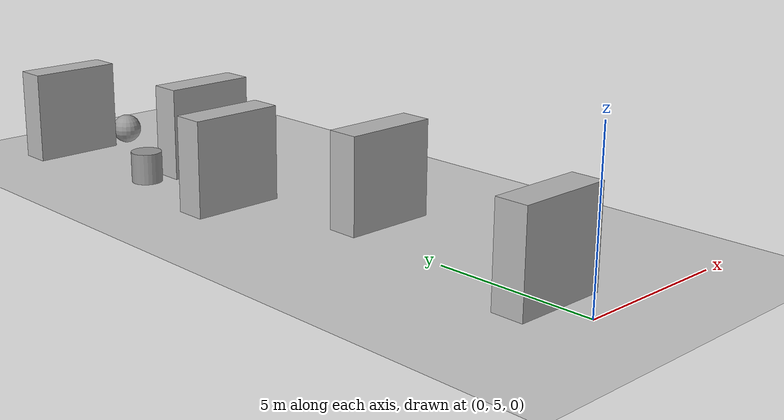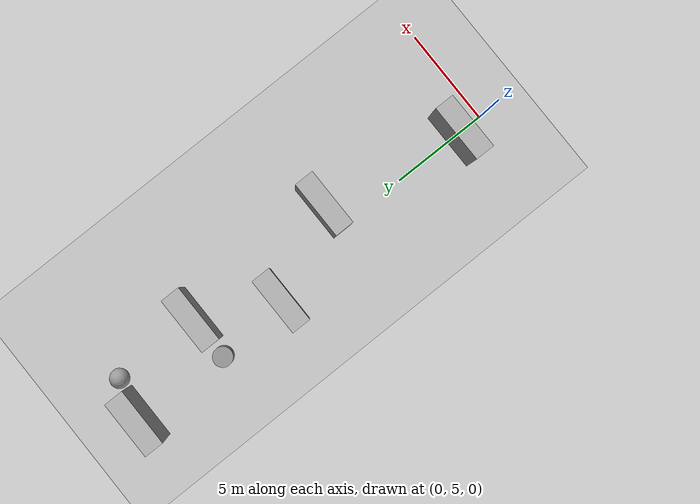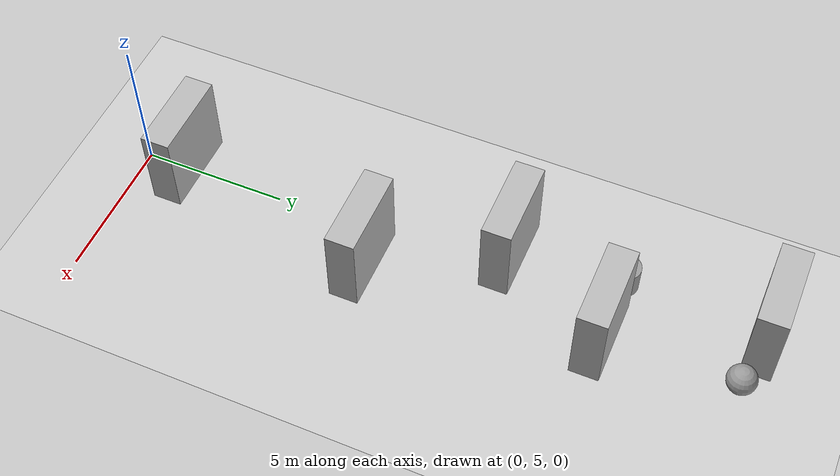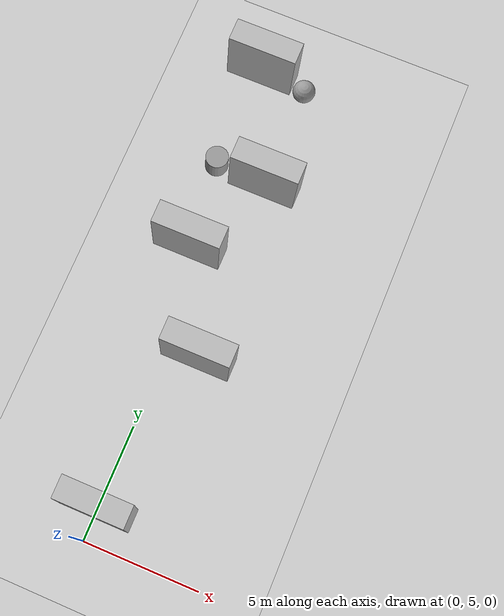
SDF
<sdf version="1.6">
 <world name="default">
  <light name="sun" type="directional">
   <pose>0 0 10 0 -0 0</pose>
   <diffuse>0.8 0.8 0.8 1</diffuse>
   <specular>0.2 0.2 0.2 1</specular>
   <attenuation>
    <range>1000</range>
    <constant>0.9</constant>
    <linear>0.01</linear>
    <quadratic>0.001</quadratic>
   </attenuation>
   <direction>-0.5 0.1 -0.9</direction>
  </light>
  <model name="ground_plane">
   <static>1</static>
   <link name="link">
    <collision name="collision">
     <geometry><plane><normal>0 0 1</normal><size>100 100</size></plane></geometry>
     <surface>
      <contact><collide_bitmask>65535</collide_bitmask></contact>
      <friction><ode><mu>100</mu><mu2>50</mu2></ode></friction>
     </surface>
    </collision>
    <visual name="visual">
     <cast_shadows>0</cast_shadows>
     <geometry><plane><normal>0 0 1</normal><size>100 100</size></plane></geometry>
     <material>
      <script><uri>file://media/materials/scripts/gazebo.material</uri><name>Gazebo/Grey</name></script>
     </material>
    </visual>
   </link>
  </model>
  <gravity>0 0 -9.8</gravity>
  <magnetic_field>6e-06 2.3e-05 -4.2e-05</magnetic_field>
  <atmosphere type="adiabatic"/>
  <physics name="default_physics" default="0" type="ode">
   <max_step_size>0.001</max_step_size>
   <real_time_factor>1</real_time_factor>
   <real_time_update_rate>1000</real_time_update_rate>
  </physics>
  <scene><ambient>0.4 0.4 0.4 1</ambient><background>0.7 0.7 0.7 1</background><shadows>1</shadows></scene>
  <spherical_coordinates>
   <surface_model>EARTH_WGS84</surface_model>
   <latitude_deg>0</latitude_deg>
   <longitude_deg>0</longitude_deg>
   <elevation>0</elevation>
   <heading_deg>0</heading_deg>
  </spherical_coordinates>
  <model name="brick_box_3x1x3">
   <static>1</static>
   <link name="chassis">
    <pose>0 0 1.5 0 -0 0</pose>
    <collision name="collision"><geometry><box><size>3 1 3</size></box></geometry></collision>
    <visual name="visual">
     <geometry><mesh><uri>model://brick_box_3x1x3/meshes/simple_box.dae</uri><scale>3 1 3</scale></mesh></geometry>
     <material>
      <script>
       <uri>model://brick_box_3x1x3/materials/scripts</uri>
       <uri>model://brick_box_3x1x3/materials/textures</uri>
       <name>BrickBox/Diffuse</name>
      </script>
     </material>
    </visual>
   </link>
   <pose>0.027154 6.49901 0 0 -0 0</pose>
  </model>
  <model name="brick_box_3x1x3_1">
   <static>1</static>
   <link name="chassis">
    <pose>0 0 1.5 0 -0 0</pose>
    <collision name="collision"><geometry><box><size>3 1 3</size></box></geometry></collision>
    <visual name="visual">
     <geometry><mesh><uri>model://brick_box_3x1x3/meshes/simple_box.dae</uri><scale>3 1 3</scale></mesh></geometry>
     <material>
      <script>
       <uri>model://brick_box_3x1x3/materials/scripts</uri>
       <uri>model://brick_box_3x1x3/materials/textures</uri>
       <name>BrickBox/Diffuse</name>
      </script>
     </material>
    </visual>
   </link>
   <pose>1.30844 13.7279 0 0 -0 0</pose>
  </model>
  <model name="brick_box_3x1x3_2">
   <static>1</static>
   <link name="chassis">
    <pose>0 0 1.5 0 -0 0</pose>
    <collision name="collision"><geometry><box><size>3 1 3</size></box></geometry></collision>
    <visual name="visual">
     <geometry><mesh><uri>model://brick_box_3x1x3/meshes/simple_box.dae</uri><scale>3 1 3</scale></mesh></geometry>
     <material>
      <script>
       <uri>model://brick_box_3x1x3/materials/scripts</uri>
       <uri>model://brick_box_3x1x3/materials/textures</uri>
       <name>BrickBox/Diffuse</name>
      </script>
     </material>
    </visual>
   </link>
   <pose>-0.919527 18.0407 0 0 -0 0</pose>
  </model>
  <model name="brick_box_3x1x3_3">
   <static>1</static>
   <link name="chassis">
    <pose>0 0 1.5 0 -0 0</pose>
    <collision name="collision"><geometry><box><size>3 1 3</size></box></geometry></collision>
    <visual name="visual">
     <geometry><mesh><uri>model://brick_box_3x1x3/meshes/simple_box.dae</uri><scale>3 1 3</scale></mesh></geometry>
     <material>
      <script>
       <uri>model://brick_box_3x1x3/materials/scripts</uri>
       <uri>model://brick_box_3x1x3/materials/textures</uri>
       <name>BrickBox/Diffuse</name>
      </script>
     </material>
    </visual>
   </link>
   <pose>0.966757 21.8245 0 0 -0 0</pose>
  </model>
  <model name="unit_cylinder">
   <pose>-1.29646 21.8891 0.499994 3e-06 -4e-06 0</pose>
   <link name="link">
    <inertial>
     <mass>1</mass>
     <inertia><ixx>0.145833</ixx><ixy>0</ixy><ixz>0</ixz><iyy>0.145833</iyy><iyz>0</iyz><izz>0.125</izz></inertia>
    </inertial>
    <collision name="collision">
     <geometry><cylinder><radius>0.5</radius><length>1</length></cylinder></geometry>
    </collision>
    <visual name="visual">
     <geometry><cylinder><radius>0.5</radius><length>1</length></cylinder></geometry>
     <material>
      <script><name>Gazebo/Grey</name><uri>file://media/materials/scripts/gazebo.material</uri></script>
     </material>
    </visual>
   </link>
  </model>
  <model name="brick_box_3x1x3_4">
   <static>1</static>
   <link name="chassis">
    <pose>0 0 1.5 0 -0 0</pose>
    <collision name="collision"><geometry><box><size>3 1 3</size></box></geometry></collision>
    <visual name="visual">
     <geometry><mesh><uri>model://brick_box_3x1x3/meshes/simple_box.dae</uri><scale>3 1 3</scale></mesh></geometry>
     <material>
      <script>
       <uri>model://brick_box_3x1x3/materials/scripts</uri>
       <uri>model://brick_box_3x1x3/materials/textures</uri>
       <name>BrickBox/Diffuse</name>
      </script>
     </material>
    </visual>
   </link>
   <pose>-1.12122 26.7402 0 0 -0 0</pose>
  </model>
  <model name="unit_sphere">
   <pose>0.968971 26.4092 0.5 0 -0 0</pose>
   <link name="link">
    <inertial>
     <mass>1</mass>
     <inertia><ixx>0.1</ixx><ixy>0</ixy><ixz>0</ixz><iyy>0.1</iyy><iyz>0</iyz><izz>0.1</izz></inertia>
    </inertial>
    <collision name="collision"><geometry><sphere><radius>0.5</radius></sphere></geometry></collision>
    <visual name="visual">
     <geometry><sphere><radius>0.5</radius></sphere></geometry>
     <material>
      <script><name>Gazebo/Grey</name><uri>file://media/materials/scripts/gazebo.material</uri></script>
     </material>
    </visual>
   </link>
  </model>
 </world>
</sdf>
